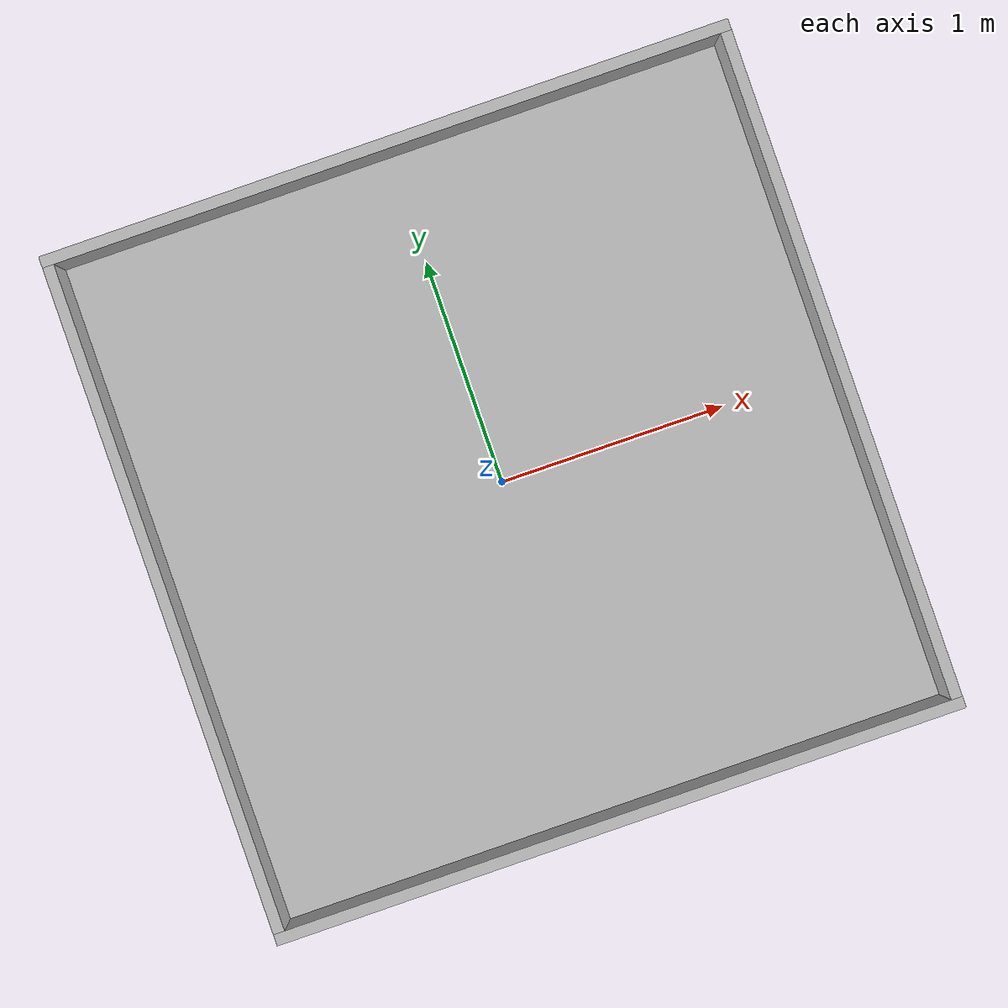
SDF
<?xml version="1.0" ?>

<sdf version="1.8">
	<world name="default">
    <physics name="1ms" type="ignored">
      <max_step_size>0.001</max_step_size>
      <real_time_factor>1.0</real_time_factor>
    </physics>
    <plugin filename="ignition-gazebo-physics-system" name="ignition::gazebo::systems::Physics">
    </plugin>
    <plugin filename="ignition-gazebo-user-commands-system" name="ignition::gazebo::systems::UserCommands">
    </plugin>
    <plugin filename="ignition-gazebo-scene-broadcaster-system" name="ignition::gazebo::systems::SceneBroadcaster">
    </plugin>
    <plugin filename="ignition-gazebo-sensors-system" name="ignition::gazebo::systems::Sensors">
      <render_engine>ogre2</render_engine>
    </plugin>
    <plugin filename="ignition-gazebo-imu-system" name="ignition::gazebo::systems::Imu"/>

    <light name="sun" type="directional">
      <pose>0 0 10 0 0 0</pose>
      <cast_shadows>true</cast_shadows>
      <diffuse>0.8 0.8 0.8 1</diffuse>
      <specular>0.2 0.2 0.2 1</specular>
      <direction>-0.5 0.1 -0.9</direction>
    </light>

		<!-- simulation table -->
		<include>
			<uri>model://simulation_table</uri>
		</include>
	</world>
</sdf>

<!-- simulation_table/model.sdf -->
<sdf version="1.8">
  <model name="simulation_table">
    <static>true</static>
    <link name="floor">
      <collision name="collision">
        <geometry>
          <plane>
            <normal>0 0 1</normal>
            <size>3.0 3.0</size>
          </plane>
        </geometry>
      </collision>
      <visual name="visual">
        <cast_shadows>false</cast_shadows>
        <geometry>
          <plane>
            <normal>0 0 1</normal>
            <size>3.0 3.0</size>
          </plane>
        </geometry>
        <material>
          <script>
            <uri>model://simulation_table/materials/scripts/</uri>
            <uri>model://simulation_table/materials/textures/</uri>
            <name>SimulationTable/Background</name>
          </script>
        </material>
      </visual>
    </link>
    <link name="side_1">
      <pose relative_to="floor">0.0 1.5 0.1 1.57079632679 0 0</pose>
      <collision name="collision">
        <geometry>
          <box>
            <size>3.05 0.3 0.05</size>
          </box>
        </geometry>
      </collision>
      <visual name="visual">
        <cast_shadows>false</cast_shadows>
        <geometry>
          <box>
            <size>3.05 0.3 0.05</size>
          </box>
        </geometry>
      </visual>
    </link>
    <link name="side_2">
      <pose relative_to="floor">0.0 -1.5 0.1 1.57079632679 0 0</pose>
      <collision name="collision">
        <geometry>
          <box>
            <size>3.05 0.3 0.05</size>
          </box>
        </geometry>
      </collision>
      <visual name="visual">
        <cast_shadows>false</cast_shadows>
        <geometry>
          <box>
            <size>3.05 0.3 0.05</size>
          </box>
        </geometry>
      </visual>
    </link>
    <link name="side_3">
      <pose relative_to="floor">1.5 0.0 0.1 1.57079632679 0 1.57079632679</pose>
      <collision name="collision">
        <geometry>
          <box>
            <size>3.05 0.3 0.05</size>
          </box>
        </geometry>
      </collision>
      <visual name="visual">
        <cast_shadows>false</cast_shadows>
        <geometry>
          <box>
            <size>3.05 0.3 0.05</size>
          </box>
        </geometry>
      </visual>
    </link>
    <link name="side_4">
      <pose relative_to="floor">-1.5 0.0 0.1 1.57079632679 0 1.57079632679</pose>
      <collision name="collision">
        <geometry>
          <box>
            <size>3.05 0.3 0.05</size>
          </box>
        </geometry>
      </collision>
      <visual name="visual">
        <cast_shadows>false</cast_shadows>
        <geometry>
          <box>
            <size>3.05 0.3 0.05</size>
          </box>
        </geometry>
      </visual>
    </link>
  </model>
</sdf>
